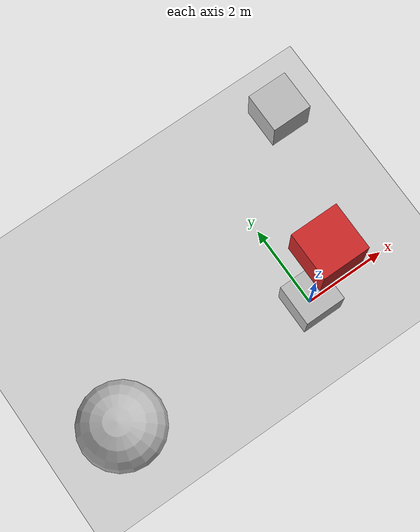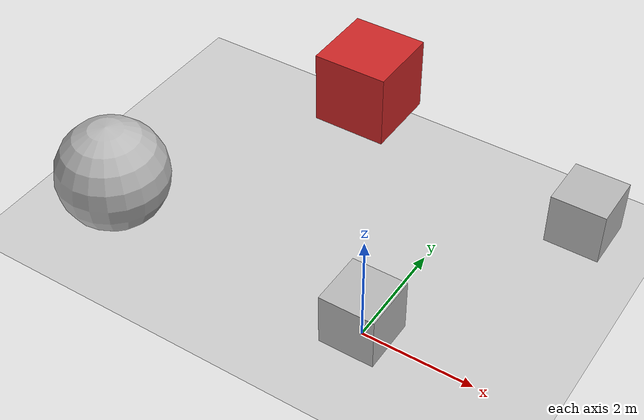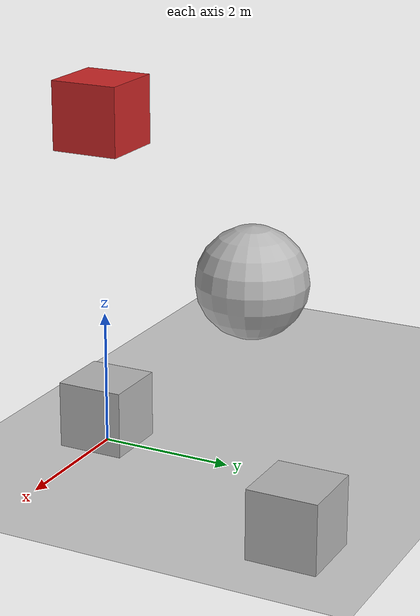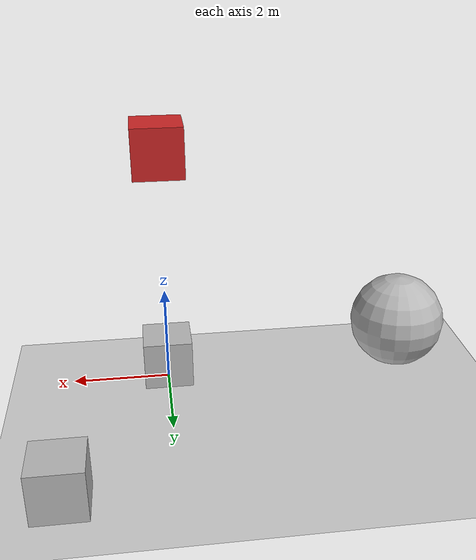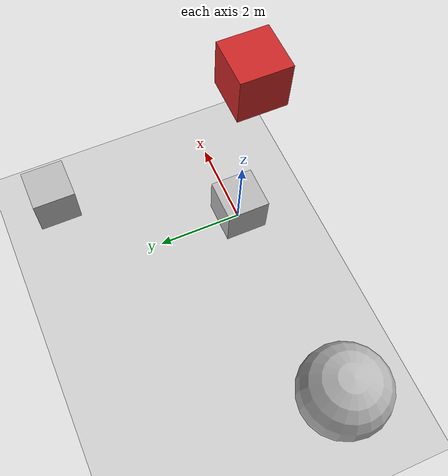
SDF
<?xml version="1.0"?>
<sdf version="1.4">
  <world name="default">

    <!-- Ground Plane -->
    <include>
      <uri>model://ground_plane</uri>
    </include>

    <include>
      <uri>model://sun</uri>
    </include>

    <gravity>0  0  0</gravity>

    <model name="box">
      <pose>0 0 0 0 0 0</pose>

      <link name="body1">
      <pose frame=''>0 0 5 0 0 0</pose>
        <visual name="visual">
        <material>
          <script>
              <uri>file://media/materials/scripts/gazebo.material</uri>
              <name>Gazebo/Red</name>
          </script>
        </material>
          <geometry>
            <box>
              <size>1 1 1</size>
            </box>
          </geometry>
        </visual>
      </link>

      <link name="body2">
      <pose frame=''>0 0 0.5 0 0 0</pose>
        <visual name="visual">
          <geometry>
            <box>
              <size>1 1 1</size>
            </box>
          </geometry>
        </visual>
      </link>

      <link name="body3">
      <pose frame=''>2 4 0.5 0 0 0</pose>
        <visual name="visual">
          <geometry>
            <box>
              <size>1 1 1</size>
            </box>
          </geometry>
        </visual>
      </link>

      <plugin name="model_push" filename="libmodel_push.so"/>
    </model>

    <model name="sphere">
      <pose>-5 0 1 0 0 0</pose>
      <link name="body">
        <visual name="visual">
          <geometry>
            <sphere>
              <radius>1</radius>
            </sphere>
          </geometry>
        </visual>
      </link>
    </model>

  </world>
</sdf>
